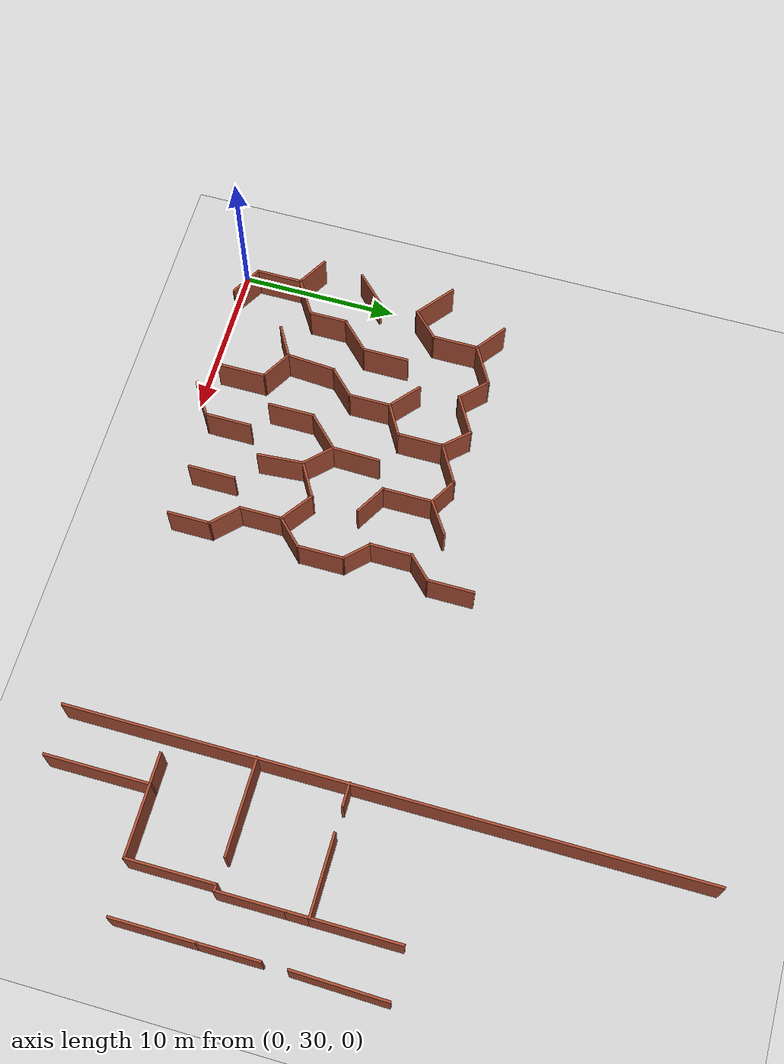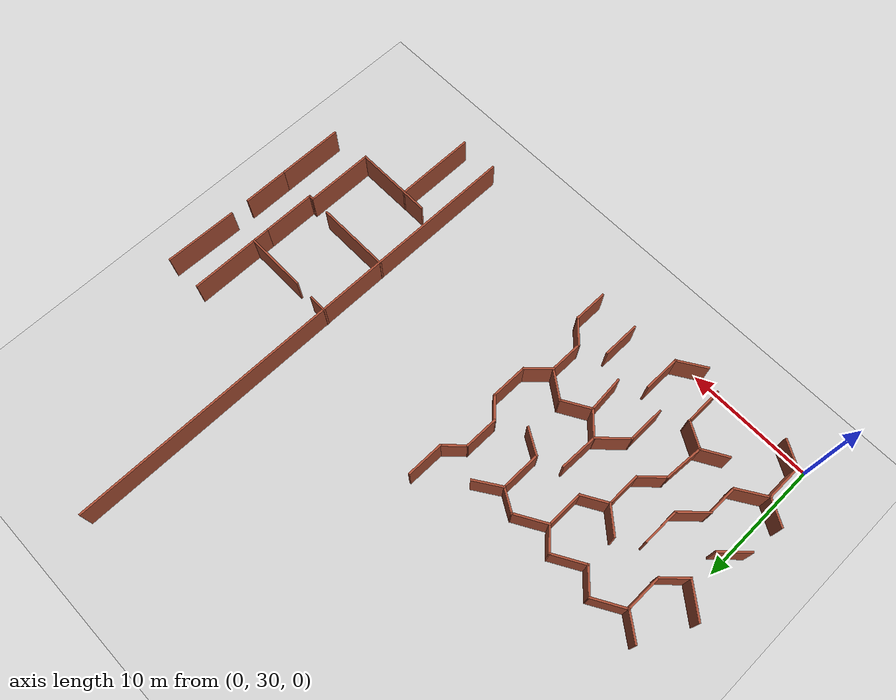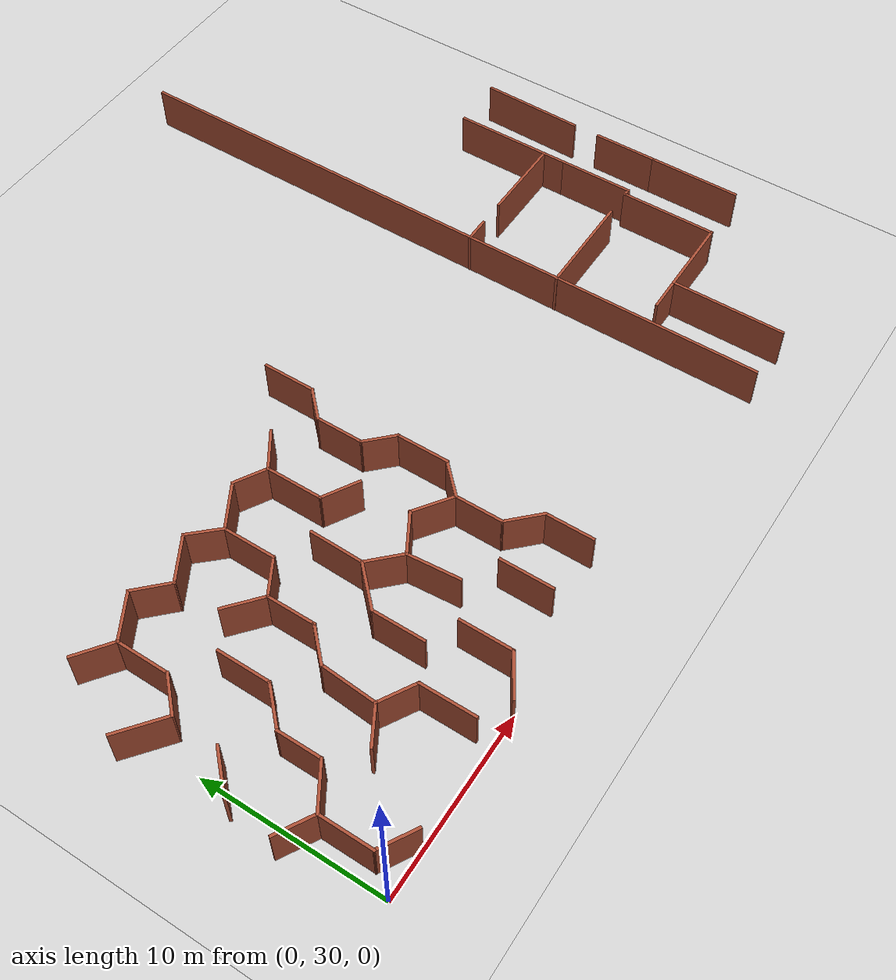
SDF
<sdf version="1.6">
 <world name="default">
  <model name="maze_rect_3">
   <pose>4e-06 -9.9e-05 0 0 -0 1.57001</pose>
   <link name="Wall_144">
    <collision name="Wall_144_Collision">
     <geometry><box><size>3 0.15 2.5</size></box></geometry>
     <pose>0 0 1.25 0 -0 0</pose>
    </collision>
    <visual name="Wall_144_Visual">
     <pose>0 0 1.25 0 -0 0</pose>
     <geometry><box><size>3 0.15 2.5</size></box></geometry>
     <material>
      <script><uri>file://media/materials/scripts/gazebo.material</uri><name>Gazebo/Bricks</name></script>
      <ambient>1 1 1 1</ambient>
     </material>
     <meta><layer>0</layer></meta>
    </visual>
    <pose>48.7587 -18.6045 0 0 -0 3.14159</pose>
   </link>
   <link name="Wall_145">
    <collision name="Wall_145_Collision">
     <geometry><box><size>2 0.15 2.5</size></box></geometry>
     <pose>0 0 1.25 0 -0 0</pose>
    </collision>
    <visual name="Wall_145_Visual">
     <pose>0 0 1.25 0 -0 0</pose>
     <geometry><box><size>2 0.15 2.5</size></box></geometry>
     <material>
      <script><uri>file://media/materials/scripts/gazebo.material</uri><name>Gazebo/Bricks</name></script>
      <ambient>1 1 1 1</ambient>
     </material>
     <meta><layer>0</layer></meta>
    </visual>
    <pose>46.6796 -17.9505 0 0 -0 2.35619</pose>
   </link>
   <link name="Wall_146">
    <collision name="Wall_146_Collision">
     <geometry><box><size>2.75 0.15 2.5</size></box></geometry>
     <pose>0 0 1.25 0 -0 0</pose>
    </collision>
    <visual name="Wall_146_Visual">
     <pose>0 0 1.25 0 -0 0</pose>
     <geometry><box><size>2.75 0.15 2.5</size></box></geometry>
     <material>
      <script><uri>file://media/materials/scripts/gazebo.material</uri><name>Gazebo/Bricks</name></script>
      <ambient>1 1 1 1</ambient>
     </material>
     <meta><layer>0</layer></meta>
    </visual>
    <pose>44.7255 -17.2964 0 0 -0 3.14159</pose>
   </link>
   <link name="Wall_147">
    <collision name="Wall_147_Collision">
     <geometry><box><size>2 0.15 2.5</size></box></geometry>
     <pose>0 0 1.25 0 -0 0</pose>
    </collision>
    <visual name="Wall_147_Visual">
     <pose>0 0 1.25 0 -0 0</pose>
     <geometry><box><size>2 0.15 2.5</size></box></geometry>
     <material>
      <script><uri>file://media/materials/scripts/gazebo.material</uri><name>Gazebo/Bricks</name></script>
      <ambient>1 1 1 1</ambient>
     </material>
     <meta><layer>0</layer></meta>
    </visual>
    <pose>42.7714 -17.9505 0 0 -0 -2.35619</pose>
   </link>
   <link name="Wall_148">
    <collision name="Wall_148_Collision">
     <geometry><box><size>3 0.15 2.5</size></box></geometry>
     <pose>0 0 1.25 0 -0 0</pose>
    </collision>
    <visual name="Wall_148_Visual">
     <pose>0 0 1.25 0 -0 0</pose>
     <geometry><box><size>3 0.15 2.5</size></box></geometry>
     <material>
      <script><uri>file://media/materials/scripts/gazebo.material</uri><name>Gazebo/Bricks</name></script>
      <ambient>1 1 1 1</ambient>
     </material>
     <meta><layer>0</layer></meta>
    </visual>
    <pose>40.6924 -18.6045 0 0 -0 3.14159</pose>
   </link>
   <link name="Wall_149">
    <collision name="Wall_149_Collision">
     <geometry><box><size>2.25 0.15 2.5</size></box></geometry>
     <pose>0 0 1.25 0 -0 0</pose>
    </collision>
    <visual name="Wall_149_Visual">
     <pose>0 0 1.25 0 -0 0</pose>
     <geometry><box><size>2.25 0.15 2.5</size></box></geometry>
     <material>
      <script><uri>file://media/materials/scripts/gazebo.material</uri><name>Gazebo/Bricks</name></script>
      <ambient>1 1 1 1</ambient>
     </material>
     <meta><layer>0</layer></meta>
    </visual>
    <pose>38.5249 -17.8621 0 0 -0 2.35619</pose>
   </link>
   <link name="Wall_150">
    <collision name="Wall_150_Collision">
     <geometry><box><size>2.75 0.15 2.5</size></box></geometry>
     <pose>0 0 1.25 0 -0 0</pose>
    </collision>
    <visual name="Wall_150_Visual">
     <pose>0 0 1.25 0 -0 0</pose>
     <geometry><box><size>2.75 0.15 2.5</size></box></geometry>
     <material>
      <script><uri>file://media/materials/scripts/gazebo.material</uri><name>Gazebo/Bricks</name></script>
      <ambient>1 1 1 1</ambient>
     </material>
     <meta><layer>0</layer></meta>
    </visual>
    <pose>36.4824 -17.1196 0 0 -0 3.14159</pose>
   </link>
   <link name="Wall_151">
    <collision name="Wall_151_Collision">
     <geometry><box><size>2.25 0.15 2.5</size></box></geometry>
     <pose>0 0 1.25 0 -0 0</pose>
    </collision>
    <visual name="Wall_151_Visual">
     <pose>0 0 1.25 0 -0 0</pose>
     <geometry><box><size>2.25 0.15 2.5</size></box></geometry>
     <material>
      <script><uri>file://media/materials/scripts/gazebo.material</uri><name>Gazebo/Bricks</name></script>
      <ambient>1 1 1 1</ambient>
     </material>
     <meta><layer>0</layer></meta>
    </visual>
    <pose>34.44 -17.8621 0 0 -0 -2.35619</pose>
   </link>
   <link name="Wall_152">
    <collision name="Wall_152_Collision">
     <geometry><box><size>2.75 0.15 2.5</size></box></geometry>
     <pose>0 0 1.25 0 -0 0</pose>
    </collision>
    <visual name="Wall_152_Visual">
     <pose>0 0 1.25 0 -0 0</pose>
     <geometry><box><size>2.75 0.15 2.5</size></box></geometry>
     <material>
      <script><uri>file://media/materials/scripts/gazebo.material</uri><name>Gazebo/Bricks</name></script>
      <ambient>1 1 1 1</ambient>
     </material>
     <meta><layer>0</layer></meta>
    </visual>
    <pose>32.3975 -18.6045 0 0 -0 3.14159</pose>
   </link>
   <link name="Wall_208">
    <collision name="Wall_208_Collision">
     <geometry><box><size>3 0.15 2.5</size></box></geometry>
     <pose>0 0 1.25 0 -0 0</pose>
    </collision>
    <visual name="Wall_208_Visual">
     <pose>0 0 1.25 0 -0 0</pose>
     <geometry><box><size>3 0.15 2.5</size></box></geometry>
     <material>
      <script><uri>file://media/materials/scripts/gazebo.material</uri><name>Gazebo/Bricks</name></script>
      <ambient>1 1 1 1</ambient>
     </material>
     <meta><layer>0</layer></meta>
    </visual>
    <pose>32.7462 -15.3032 0 0 -0 3.14159</pose>
   </link>
   <link name="Wall_215">
    <collision name="Wall_215_Collision">
     <geometry><box><size>3 0.15 2.5</size></box></geometry>
     <pose>0 0 1.25 0 -0 0</pose>
    </collision>
    <visual name="Wall_215_Visual">
     <pose>0 0 1.25 0 -0 0</pose>
     <geometry><box><size>3 0.15 2.5</size></box></geometry>
     <material>
      <script><uri>file://media/materials/scripts/gazebo.material</uri><name>Gazebo/Bricks</name></script>
      <ambient>1 1 1 1</ambient>
     </material>
     <meta><layer>0</layer></meta>
    </visual>
    <pose>36.1781 -9.85453 0 0 -0 0</pose>
   </link>
   <link name="Wall_216">
    <collision name="Wall_216_Collision">
     <geometry><box><size>2.75 0.15 2.5</size></box></geometry>
     <pose>0 0 1.25 0 -0 0</pose>
    </collision>
    <visual name="Wall_216_Visual">
     <pose>0 0 1.25 0 -0 0</pose>
     <geometry><box><size>2.75 0.15 2.5</size></box></geometry>
     <material>
      <script><uri>file://media/materials/scripts/gazebo.material</uri><name>Gazebo/Bricks</name></script>
      <ambient>1 1 1 1</ambient>
     </material>
     <meta><layer>0</layer></meta>
    </visual>
    <pose>38.5224 -10.7738 0 0 -0 -0.785398</pose>
   </link>
   <link name="Wall_217">
    <collision name="Wall_217_Collision">
     <geometry><box><size>2.25 0.15 2.5</size></box></geometry>
     <pose>0 0 1.25 0 -0 0</pose>
    </collision>
    <visual name="Wall_217_Visual">
     <pose>0 0 1.25 0 -0 0</pose>
     <geometry><box><size>2.25 0.15 2.5</size></box></geometry>
     <material>
      <script><uri>file://media/materials/scripts/gazebo.material</uri><name>Gazebo/Bricks</name></script>
      <ambient>1 1 1 1</ambient>
     </material>
     <meta><layer>0</layer></meta>
    </visual>
    <pose>38.6992 -12.4355 0 0 -0 -2.35619</pose>
   </link>
   <link name="Wall_218">
    <collision name="Wall_218_Collision">
     <geometry><box><size>2.5 0.15 2.5</size></box></geometry>
     <pose>0 0 1.25 0 -0 0</pose>
    </collision>
    <visual name="Wall_218_Visual">
     <pose>0 0 1.25 0 -0 0</pose>
     <geometry><box><size>2.5 0.15 2.5</size></box></geometry>
     <material>
      <script><uri>file://media/materials/scripts/gazebo.material</uri><name>Gazebo/Bricks</name></script>
      <ambient>1 1 1 1</ambient>
     </material>
     <meta><layer>0</layer></meta>
    </visual>
    <pose>38.5442 -14.1955 0 0 -0 -1.0472</pose>
   </link>
   <link name="Wall_220">
    <collision name="Wall_220_Collision">
     <geometry><box><size>2.48566 0.15 2.5</size></box></geometry>
     <pose>0 0 1.25 0 -0 0</pose>
    </collision>
    <visual name="Wall_220_Visual">
     <pose>0 0 1.25 0 -0 0</pose>
     <geometry><box><size>2.48566 0.15 2.5</size></box></geometry>
     <material>
      <script><uri>file://media/materials/scripts/gazebo.material</uri><name>Gazebo/Bricks</name></script>
      <ambient>1 1 1 1</ambient>
     </material>
     <meta><layer>0</layer></meta>
    </visual>
    <pose>38.4571 -16.1663 0 0 -0 0.954913</pose>
   </link>
   <link name="Wall_222">
    <collision name="Wall_222_Collision">
     <geometry><box><size>2.99185 0.15 2.5</size></box></geometry>
     <pose>0 0 1.25 0 -0 0</pose>
    </collision>
    <visual name="Wall_222_Visual">
     <pose>0 0 1.25 0 -0 0</pose>
     <geometry><box><size>2.99185 0.15 2.5</size></box></geometry>
     <material>
      <script><uri>file://media/materials/scripts/gazebo.material</uri><name>Gazebo/Bricks</name></script>
      <ambient>1 1 1 1</ambient>
     </material>
     <meta><layer>0</layer></meta>
    </visual>
    <pose>36.5401 -13.2884 0 0 -0 0.077809</pose>
   </link>
   <link name="Wall_224">
    <collision name="Wall_224_Collision">
     <geometry><box><size>3.07986 0.15 2.5</size></box></geometry>
     <pose>0 0 1.25 0 -0 0</pose>
    </collision>
    <visual name="Wall_224_Visual">
     <pose>0 0 1.25 0 -0 0</pose>
     <geometry><box><size>3.07986 0.15 2.5</size></box></geometry>
     <material>
      <script><uri>file://media/materials/scripts/gazebo.material</uri><name>Gazebo/Bricks</name></script>
      <ambient>1 1 1 1</ambient>
     </material>
     <meta><layer>0</layer></meta>
    </visual>
    <pose>40.9062 -11.726 0 0 -0 3.11909</pose>
   </link>
   <link name="Wall_226">
    <collision name="Wall_226_Collision">
     <geometry><box><size>3 0.15 2.5</size></box></geometry>
     <pose>0 0 1.25 0 -0 0</pose>
    </collision>
    <visual name="Wall_226_Visual">
     <pose>0 0 1.25 0 -0 0</pose>
     <geometry><box><size>3 0.15 2.5</size></box></geometry>
     <material>
      <script><uri>file://media/materials/scripts/gazebo.material</uri><name>Gazebo/Bricks</name></script>
      <ambient>1 1 1 1</ambient>
     </material>
     <meta><layer>0</layer></meta>
    </visual>
    <pose>32.5875 -11.6002 0 0 -0 3.14159</pose>
   </link>
   <link name="Wall_232">
    <collision name="Wall_232_Collision">
     <geometry><box><size>2.51461 0.15 2.5</size></box></geometry>
     <pose>0 0 1.25 0 -0 0</pose>
    </collision>
    <visual name="Wall_232_Visual">
     <pose>0 0 1.25 0 -0 0</pose>
     <geometry><box><size>2.51461 0.15 2.5</size></box></geometry>
     <material>
      <script><uri>file://media/materials/scripts/gazebo.material</uri><name>Gazebo/Bricks</name></script>
      <ambient>1 1 1 1</ambient>
     </material>
     <meta><layer>0</layer></meta>
    </visual>
    <pose>30.5327 -10.5996 0 0 -0 -1.00902</pose>
   </link>
   <link name="Wall_234">
    <collision name="Wall_234_Collision">
     <geometry><box><size>2.25 0.15 2.5</size></box></geometry>
     <pose>0 0 1.25 0 -0 0</pose>
    </collision>
    <visual name="Wall_234_Visual">
     <pose>0 0 1.25 0 -0 0</pose>
     <geometry><box><size>2.25 0.15 2.5</size></box></geometry>
     <material>
      <script><uri>file://media/materials/scripts/gazebo.material</uri><name>Gazebo/Bricks</name></script>
      <ambient>1 1 1 1</ambient>
     </material>
     <meta><layer>0</layer></meta>
    </visual>
    <pose>34.3259 -5.26225 0 0 -0 -1.0472</pose>
   </link>
   <link name="Wall_235">
    <collision name="Wall_235_Collision">
     <geometry><box><size>2.25 0.15 2.5</size></box></geometry>
     <pose>0 0 1.25 0 -0 0</pose>
    </collision>
    <visual name="Wall_235_Visual">
     <pose>0 0 1.25 0 -0 0</pose>
     <geometry><box><size>2.25 0.15 2.5</size></box></geometry>
     <material>
      <script><uri>file://media/materials/scripts/gazebo.material</uri><name>Gazebo/Bricks</name></script>
      <ambient>1 1 1 1</ambient>
     </material>
     <meta><layer>0</layer></meta>
    </visual>
    <pose>34.3259 -7.08091 0 0 -0 -2.0944</pose>
   </link>
   <link name="Wall_236">
    <collision name="Wall_236_Collision">
     <geometry><box><size>3.12301 0.15 2.5</size></box></geometry>
     <pose>0 0 1.25 0 -0 0</pose>
    </collision>
    <visual name="Wall_236_Visual">
     <pose>0 0 1.25 0 -0 0</pose>
     <geometry><box><size>3.12301 0.15 2.5</size></box></geometry>
     <material>
      <script><uri>file://media/materials/scripts/gazebo.material</uri><name>Gazebo/Bricks</name></script>
      <ambient>1 1 1 1</ambient>
     </material>
     <meta><layer>0</layer></meta>
    </visual>
    <pose>32.3144 -7.99356 0 0 -0 -3.13936</pose>
   </link>
   <link name="Wall_238">
    <collision name="Wall_238_Collision">
     <geometry><box><size>2.25 0.15 2.5</size></box></geometry>
     <pose>0 0 1.25 0 -0 0</pose>
    </collision>
    <visual name="Wall_238_Visual">
     <pose>0 0 1.25 0 -0 0</pose>
     <geometry><box><size>2.25 0.15 2.5</size></box></geometry>
     <material>
      <script><uri>file://media/materials/scripts/gazebo.material</uri><name>Gazebo/Bricks</name></script>
      <ambient>1 1 1 1</ambient>
     </material>
     <meta><layer>0</layer></meta>
    </visual>
    <pose>42.6312 -14.4468 0 0 -0 1.0472</pose>
   </link>
   <link name="Wall_239">
    <collision name="Wall_239_Collision">
     <geometry><box><size>3.25 0.15 2.5</size></box></geometry>
     <pose>0 0 1.25 0 -0 0</pose>
    </collision>
    <visual name="Wall_239_Visual">
     <pose>0 0 1.25 0 -0 0</pose>
     <geometry><box><size>3.25 0.15 2.5</size></box></geometry>
     <material>
      <script><uri>file://media/materials/scripts/gazebo.material</uri><name>Gazebo/Bricks</name></script>
      <ambient>1 1 1 1</ambient>
     </material>
     <meta><layer>0</layer></meta>
    </visual>
    <pose>44.7062 -13.5375 0 0 -0 0</pose>
   </link>
   <link name="Wall_240">
    <collision name="Wall_240_Collision">
     <geometry><box><size>2 0.15 2.5</size></box></geometry>
     <pose>0 0 1.25 0 -0 0</pose>
    </collision>
    <visual name="Wall_240_Visual">
     <pose>0 0 1.25 0 -0 0</pose>
     <geometry><box><size>2 0.15 2.5</size></box></geometry>
     <material>
      <script><uri>file://media/materials/scripts/gazebo.material</uri><name>Gazebo/Bricks</name></script>
      <ambient>1 1 1 1</ambient>
     </material>
     <meta><layer>0</layer></meta>
    </visual>
    <pose>46.7187 -12.7364 0 0 -0 1.0472</pose>
   </link>
   <link name="Wall_241">
    <collision name="Wall_241_Collision">
     <geometry><box><size>2.75 0.15 2.5</size></box></geometry>
     <pose>0 0 1.25 0 -0 0</pose>
    </collision>
    <visual name="Wall_241_Visual">
     <pose>0 0 1.25 0 -0 0</pose>
     <geometry><box><size>2.75 0.15 2.5</size></box></geometry>
     <material>
      <script><uri>file://media/materials/scripts/gazebo.material</uri><name>Gazebo/Bricks</name></script>
      <ambient>1 1 1 1</ambient>
     </material>
     <meta><layer>0</layer></meta>
    </visual>
    <pose>46.5312 -10.8095 0 0 -0 2.0944</pose>
   </link>
   <link name="Wall_242">
    <collision name="Wall_242_Collision">
     <geometry><box><size>3 0.15 2.5</size></box></geometry>
     <pose>0 0 1.25 0 -0 0</pose>
    </collision>
    <visual name="Wall_242_Visual">
     <pose>0 0 1.25 0 -0 0</pose>
     <geometry><box><size>3 0.15 2.5</size></box></geometry>
     <material>
      <script><uri>file://media/materials/scripts/gazebo.material</uri><name>Gazebo/Bricks</name></script>
      <ambient>1 1 1 1</ambient>
     </material>
     <meta><layer>0</layer></meta>
    </visual>
    <pose>44.4562 -9.68366 0 0 -0 3.14159</pose>
   </link>
   <link name="Wall_243">
    <collision name="Wall_243_Collision">
     <geometry><box><size>2.25 0.15 2.5</size></box></geometry>
     <pose>0 0 1.25 0 -0 0</pose>
    </collision>
    <visual name="Wall_243_Visual">
     <pose>0 0 1.25 0 -0 0</pose>
     <geometry><box><size>2.25 0.15 2.5</size></box></geometry>
     <material>
      <script><uri>file://media/materials/scripts/gazebo.material</uri><name>Gazebo/Bricks</name></script>
      <ambient>1 1 1 1</ambient>
     </material>
     <meta><layer>0</layer></meta>
    </visual>
    <pose>42.5062 -8.77434 0 0 -0 2.0944</pose>
   </link>
   <link name="Wall_244">
    <collision name="Wall_244_Collision">
     <geometry><box><size>2.75 0.15 2.5</size></box></geometry>
     <pose>0 0 1.25 0 -0 0</pose>
    </collision>
    <visual name="Wall_244_Visual">
     <pose>0 0 1.25 0 -0 0</pose>
     <geometry><box><size>2.75 0.15 2.5</size></box></geometry>
     <material>
      <script><uri>file://media/materials/scripts/gazebo.material</uri><name>Gazebo/Bricks</name></script>
      <ambient>1 1 1 1</ambient>
     </material>
     <meta><layer>0</layer></meta>
    </visual>
    <pose>40.6812 -7.86501 0 0 -0 3.14159</pose>
   </link>
   <link name="Wall_245">
    <collision name="Wall_245_Collision">
     <geometry><box><size>2.25 0.15 2.5</size></box></geometry>
     <pose>0 0 1.25 0 -0 0</pose>
    </collision>
    <visual name="Wall_245_Visual">
     <pose>0 0 1.25 0 -0 0</pose>
     <geometry><box><size>2.25 0.15 2.5</size></box></geometry>
     <material>
      <script><uri>file://media/materials/scripts/gazebo.material</uri><name>Gazebo/Bricks</name></script>
      <ambient>1 1 1 1</ambient>
     </material>
     <meta><layer>0</layer></meta>
    </visual>
    <pose>38.6388 -7.12255 0 0 -0 2.35619</pose>
   </link>
   <link name="Wall_246">
    <collision name="Wall_246_Collision">
     <geometry><box><size>3.2025 0.15 2.5</size></box></geometry>
     <pose>0 0 1.25 0 -0 0</pose>
    </collision>
    <visual name="Wall_246_Visual">
     <pose>0 0 1.25 0 -0 0</pose>
     <geometry><box><size>3.2025 0.15 2.5</size></box></geometry>
     <material>
      <script><uri>file://media/materials/scripts/gazebo.material</uri><name>Gazebo/Bricks</name></script>
      <ambient>1 1 1 1</ambient>
     </material>
     <meta><layer>0</layer></meta>
    </visual>
    <pose>36.3736 -6.27583 0 0 -0 3.07323</pose>
   </link>
   <link name="Wall_248">
    <collision name="Wall_248_Collision">
     <geometry><box><size>2.39827 0.15 2.5</size></box></geometry>
     <pose>0 0 1.25 0 -0 0</pose>
    </collision>
    <visual name="Wall_248_Visual">
     <pose>0 0 1.25 0 -0 0</pose>
     <geometry><box><size>2.39827 0.15 2.5</size></box></geometry>
     <material>
      <script><uri>file://media/materials/scripts/gazebo.material</uri><name>Gazebo/Bricks</name></script>
      <ambient>1 1 1 1</ambient>
     </material>
     <meta><layer>0</layer></meta>
    </visual>
    <pose>46.8791 -14.4733 0 0 -0 2.15809</pose>
   </link>
   <link name="Wall_250">
    <collision name="Wall_250_Collision">
     <geometry><box><size>2.94552 0.15 2.5</size></box></geometry>
     <pose>0 0 1.25 0 -0 0</pose>
    </collision>
    <visual name="Wall_250_Visual">
     <pose>0 0 1.25 0 -0 0</pose>
     <geometry><box><size>2.94552 0.15 2.5</size></box></geometry>
     <material>
      <script><uri>file://media/materials/scripts/gazebo.material</uri><name>Gazebo/Bricks</name></script>
      <ambient>1 1 1 1</ambient>
     </material>
     <meta><layer>0</layer></meta>
    </visual>
    <pose>42.72 0.211357 0 0 -0 -2.24031</pose>
   </link>
   <link name="Wall_251">
    <collision name="Wall_251_Collision">
     <geometry><box><size>2.25 0.15 2.5</size></box></geometry>
     <pose>0 0 1.25 0 -0 0</pose>
    </collision>
    <visual name="Wall_251_Visual">
     <pose>0 0 1.25 0 -0 0</pose>
     <geometry><box><size>2.25 0.15 2.5</size></box></geometry>
     <material>
      <script><uri>file://media/materials/scripts/gazebo.material</uri><name>Gazebo/Bricks</name></script>
      <ambient>1 1 1 1</ambient>
     </material>
     <meta><layer>0</layer></meta>
    </visual>
    <pose>42.595 -1.62712 0 0 -0 -0.785398</pose>
   </link>
   <link name="Wall_252">
    <collision name="Wall_252_Collision">
     <geometry><box><size>3 0.15 2.5</size></box></geometry>
     <pose>0 0 1.25 0 -0 0</pose>
    </collision>
    <visual name="Wall_252_Visual">
     <pose>0 0 1.25 0 -0 0</pose>
     <geometry><box><size>3 0.15 2.5</size></box></geometry>
     <material>
      <script><uri>file://media/materials/scripts/gazebo.material</uri><name>Gazebo/Bricks</name></script>
      <ambient>1 1 1 1</ambient>
     </material>
     <meta><layer>0</layer></meta>
    </visual>
    <pose>44.7624 -2.36958 0 0 -0 0</pose>
   </link>
   <link name="Wall_253">
    <collision name="Wall_253_Collision">
     <geometry><box><size>2.75 0.15 2.5</size></box></geometry>
     <pose>0 0 1.25 0 -0 0</pose>
    </collision>
    <visual name="Wall_253_Visual">
     <pose>0 0 1.25 0 -0 0</pose>
     <geometry><box><size>2.75 0.15 2.5</size></box></geometry>
     <material>
      <script><uri>file://media/materials/scripts/gazebo.material</uri><name>Gazebo/Bricks</name></script>
      <ambient>1 1 1 1</ambient>
     </material>
     <meta><layer>0</layer></meta>
    </visual>
    <pose>46.8374 -3.49542 0 0 -0 -1.0472</pose>
   </link>
   <link name="Wall_254">
    <collision name="Wall_254_Collision">
     <geometry><box><size>2.25 0.15 2.5</size></box></geometry>
     <pose>0 0 1.25 0 -0 0</pose>
    </collision>
    <visual name="Wall_254_Visual">
     <pose>0 0 1.25 0 -0 0</pose>
     <geometry><box><size>2.25 0.15 2.5</size></box></geometry>
     <material>
      <script><uri>file://media/materials/scripts/gazebo.material</uri><name>Gazebo/Bricks</name></script>
      <ambient>1 1 1 1</ambient>
     </material>
     <meta><layer>0</layer></meta>
    </visual>
    <pose>46.745 -5.36371 0 0 -0 -2.35619</pose>
   </link>
   <link name="Wall_255">
    <collision name="Wall_255_Collision">
     <geometry><box><size>2.75 0.15 2.5</size></box></geometry>
     <pose>0 0 1.25 0 -0 0</pose>
    </collision>
    <visual name="Wall_255_Visual">
     <pose>0 0 1.25 0 -0 0</pose>
     <geometry><box><size>2.75 0.15 2.5</size></box></geometry>
     <material>
      <script><uri>file://media/materials/scripts/gazebo.material</uri><name>Gazebo/Bricks</name></script>
      <ambient>1 1 1 1</ambient>
     </material>
     <meta><layer>0</layer></meta>
    </visual>
    <pose>46.6525 -7.23201 0 0 -0 -1.0472</pose>
   </link>
   <link name="Wall_256">
    <collision name="Wall_256_Collision">
     <geometry><box><size>2.09366 0.15 2.5</size></box></geometry>
     <pose>0 0 1.25 0 -0 0</pose>
    </collision>
    <visual name="Wall_256_Visual">
     <pose>0 0 1.25 0 -0 0</pose>
     <geometry><box><size>2.09366 0.15 2.5</size></box></geometry>
     <material>
      <script><uri>file://media/materials/scripts/gazebo.material</uri><name>Gazebo/Bricks</name></script>
      <ambient>1 1 1 1</ambient>
     </material>
     <meta><layer>0</layer></meta>
    </visual>
    <pose>46.5919 -9.02075 0 0 -0 -2.39093</pose>
   </link>
   <link name="Wall_269">
    <collision name="Wall_269_Collision">
     <geometry><box><size>2.25 0.15 2.5</size></box></geometry>
     <pose>0 0 1.25 0 -0 0</pose>
    </collision>
    <visual name="Wall_269_Visual">
     <pose>0 0 1.25 0 -0 0</pose>
     <geometry><box><size>2.25 0.15 2.5</size></box></geometry>
     <material>
      <script><uri>file://media/materials/scripts/gazebo.material</uri><name>Gazebo/Bricks</name></script>
      <ambient>1 1 1 1</ambient>
     </material>
     <meta><layer>0</layer></meta>
    </visual>
    <pose>34.5085 0.198006 0 0 -0 -2.0944</pose>
   </link>
   <link name="Wall_270">
    <collision name="Wall_270_Collision">
     <geometry><box><size>3 0.15 2.5</size></box></geometry>
     <pose>0 0 1.25 0 -0 0</pose>
    </collision>
    <visual name="Wall_270_Visual">
     <pose>0 0 1.25 0 -0 0</pose>
     <geometry><box><size>3 0.15 2.5</size></box></geometry>
     <material>
      <script><uri>file://media/materials/scripts/gazebo.material</uri><name>Gazebo/Bricks</name></script>
      <ambient>1 1 1 1</ambient>
     </material>
     <meta><layer>0</layer></meta>
    </visual>
    <pose>32.5585 -0.711321 0 0 -0 3.14159</pose>
   </link>
   <link name="Wall_271">
    <collision name="Wall_271_Collision">
     <geometry><box><size>2.25 0.15 2.5</size></box></geometry>
     <pose>0 0 1.25 0 -0 0</pose>
    </collision>
    <visual name="Wall_271_Visual">
     <pose>0 0 1.25 0 -0 0</pose>
     <geometry><box><size>2.25 0.15 2.5</size></box></geometry>
     <material>
      <script><uri>file://media/materials/scripts/gazebo.material</uri><name>Gazebo/Bricks</name></script>
      <ambient>1 1 1 1</ambient>
     </material>
     <meta><layer>0</layer></meta>
    </visual>
    <pose>30.6085 -1.62065 0 0 -0 -2.0944</pose>
   </link>
   <link name="Wall_283">
    <collision name="Wall_283_Collision">
     <geometry><box><size>3 0.15 2.5</size></box></geometry>
     <pose>0 0 1.25 0 -0 0</pose>
    </collision>
    <visual name="Wall_283_Visual">
     <pose>0 0 1.25 0 -0 0</pose>
     <geometry><box><size>3 0.15 2.5</size></box></geometry>
     <material>
      <script><uri>file://media/materials/scripts/gazebo.material</uri><name>Gazebo/Bricks</name></script>
      <ambient>1 1 1 1</ambient>
     </material>
     <meta><layer>0</layer></meta>
    </visual>
    <pose>40.7341 -4.45873 0 0 -0 3.14159</pose>
   </link>
   <link name="Wall_284">
    <collision name="Wall_284_Collision">
     <geometry><box><size>2.5 0.15 2.5</size></box></geometry>
     <pose>0 0 1.25 0 -0 0</pose>
    </collision>
    <visual name="Wall_284_Visual">
     <pose>0 0 1.25 0 -0 0</pose>
     <geometry><box><size>2.5 0.15 2.5</size></box></geometry>
     <material>
      <script><uri>file://media/materials/scripts/gazebo.material</uri><name>Gazebo/Bricks</name></script>
      <ambient>1 1 1 1</ambient>
     </material>
     <meta><layer>0</layer></meta>
    </visual>
    <pose>38.4783 -3.62788 0 0 -0 2.35619</pose>
   </link>
   <link name="Wall_285">
    <collision name="Wall_285_Collision">
     <geometry><box><size>2.5 0.15 2.5</size></box></geometry>
     <pose>0 0 1.25 0 -0 0</pose>
    </collision>
    <visual name="Wall_285_Visual">
     <pose>0 0 1.25 0 -0 0</pose>
     <geometry><box><size>2.5 0.15 2.5</size></box></geometry>
     <material>
      <script><uri>file://media/materials/scripts/gazebo.material</uri><name>Gazebo/Bricks</name></script>
      <ambient>1 1 1 1</ambient>
     </material>
     <meta><layer>0</layer></meta>
    </visual>
    <pose>36.4724 -2.79703 0 0 -0 3.14159</pose>
   </link>
   <link name="Wall_286">
    <collision name="Wall_286_Collision">
     <geometry><box><size>2.61508 0.15 2.5</size></box></geometry>
     <pose>0 0 1.25 0 -0 0</pose>
    </collision>
    <visual name="Wall_286_Visual">
     <pose>0 0 1.25 0 -0 0</pose>
     <geometry><box><size>2.61508 0.15 2.5</size></box></geometry>
     <material>
      <script><uri>file://media/materials/scripts/gazebo.material</uri><name>Gazebo/Bricks</name></script>
      <ambient>1 1 1 1</ambient>
     </material>
     <meta><layer>0</layer></meta>
    </visual>
    <pose>34.6405 -1.75417 0 0 -0 2.13297</pose>
   </link>
   <link name="Wall_288">
    <collision name="Wall_288_Collision">
     <geometry><box><size>2.5 0.15 2.5</size></box></geometry>
     <pose>0 0 1.25 0 -0 0</pose>
    </collision>
    <visual name="Wall_288_Visual">
     <pose>0 0 1.25 0 -0 0</pose>
     <geometry><box><size>2.5 0.15 2.5</size></box></geometry>
     <material>
      <script><uri>file://media/materials/scripts/gazebo.material</uri><name>Gazebo/Bricks</name></script>
      <ambient>1 1 1 1</ambient>
     </material>
     <meta><layer>0</layer></meta>
    </visual>
    <pose>38.5246 -0.030677 0 0 -0 2.35619</pose>
   </link>
   <link name="Wall_295">
    <collision name="Wall_295_Collision">
     <geometry><box><size>2.35684 0.15 2.5</size></box></geometry>
     <pose>0 0 1.25 0 -0 0</pose>
    </collision>
    <visual name="Wall_295_Visual">
     <pose>0 0 1.25 0 -0 0</pose>
     <geometry><box><size>2.35684 0.15 2.5</size></box></geometry>
     <material>
      <script><uri>file://media/materials/scripts/gazebo.material</uri><name>Gazebo/Bricks</name></script>
      <ambient>1 1 1 1</ambient>
     </material>
     <meta><layer>0</layer></meta>
    </visual>
    <pose>46.8447 -1.48331 0 0 -0 -2.20893</pose>
   </link>
   <link name="Wall_297">
    <collision name="Wall_297_Collision">
     <geometry><box><size>2.39305 0.15 2.5</size></box></geometry>
     <pose>0 0 1.25 0 -0 0</pose>
    </collision>
    <visual name="Wall_297_Visual">
     <pose>0 0 1.25 0 -0 0</pose>
     <geometry><box><size>2.39305 0.15 2.5</size></box></geometry>
     <material>
      <script><uri>file://media/materials/scripts/gazebo.material</uri><name>Gazebo/Bricks</name></script>
      <ambient>1 1 1 1</ambient>
     </material>
     <meta><layer>0</layer></meta>
    </visual>
    <pose>42.705 -7.00827 0 0 -0 -2.27225</pose>
   </link>
   <static>1</static>
  </model>
  <model name="map_palace_v2_model_1">
   <pose>0 60 0 0 -0 0</pose>
   <link name="Wall_275">
    <collision name="Wall_275_Collision">
     <geometry><box><size>5.25 0.15 2.5</size></box></geometry>
     <pose>0 0 1.25 0 -0 0</pose>
    </collision>
    <visual name="Wall_275_Visual">
     <pose>0 0 1.25 0 -0 0</pose>
     <geometry><box><size>5.25 0.15 2.5</size></box></geometry>
     <material>
      <script><uri>file://media/materials/scripts/gazebo.material</uri><name>Gazebo/Bricks</name></script>
      <ambient>1 1 1 1</ambient>
     </material>
     <meta><layer>0</layer></meta>
    </visual>
    <pose>42.5023 -21.6985 0 0 -0 1.5708</pose>
   </link>
   <link name="Wall_279">
    <collision name="Wall_279_Collision">
     <geometry><box><size>6.5 0.15 2.5</size></box></geometry>
     <pose>0 0 1.25 0 -0 0</pose>
    </collision>
    <visual name="Wall_279_Visual">
     <pose>0 0 1.25 0 -0 0</pose>
     <geometry><box><size>6.5 0.15 2.5</size></box></geometry>
     <material>
      <script><uri>file://media/materials/scripts/gazebo.material</uri><name>Gazebo/Bricks</name></script>
      <ambient>1 1 1 1</ambient>
     </material>
     <meta><layer>0</layer></meta>
    </visual>
    <pose>34.8569 -27.66 0 0 -0 1.5708</pose>
   </link>
   <link name="Wall_280">
    <collision name="Wall_280_Collision">
     <geometry><box><size>2 0.15 2.5</size></box></geometry>
     <pose>0 0 1.25 0 -0 0</pose>
    </collision>
    <visual name="Wall_280_Visual">
     <pose>0 0 1.25 0 -0 0</pose>
     <geometry><box><size>2 0.15 2.5</size></box></geometry>
     <material>
      <script><uri>file://media/materials/scripts/gazebo.material</uri><name>Gazebo/Bricks</name></script>
      <ambient>1 1 1 1</ambient>
     </material>
     <meta><layer>0</layer></meta>
    </visual>
    <pose>33.9319 -24.4851 0 0 -0 3.14159</pose>
   </link>
   <link name="Wall_283">
    <collision name="Wall_283_Collision">
     <geometry><box><size>4.5 0.15 2.5</size></box></geometry>
     <pose>0 0 1.25 0 -0 0</pose>
    </collision>
    <visual name="Wall_283_Visual">
     <pose>0 0 1.25 0 -0 0</pose>
     <geometry><box><size>4.5 0.15 2.5</size></box></geometry>
     <material>
      <script><uri>file://media/materials/scripts/gazebo.material</uri><name>Gazebo/Bricks</name></script>
      <ambient>1 1 1 1</ambient>
     </material>
     <meta><layer>0</layer></meta>
    </visual>
    <pose>37.0319 -24.4851 0 0 -0 0</pose>
   </link>
   <link name="Wall_284">
    <collision name="Wall_284_Collision">
     <geometry><box><size>5.5 0.15 2.5</size></box></geometry>
     <pose>0 0 1.25 0 -0 0</pose>
    </collision>
    <visual name="Wall_284_Visual">
     <pose>0 0 1.25 0 -0 0</pose>
     <geometry><box><size>5.5 0.15 2.5</size></box></geometry>
     <material>
      <script><uri>file://media/materials/scripts/gazebo.material</uri><name>Gazebo/Bricks</name></script>
      <ambient>1 1 1 1</ambient>
     </material>
     <meta><layer>0</layer></meta>
    </visual>
    <pose>39.2069 -21.8101 0 0 -0 1.5708</pose>
   </link>
   <link name="Wall_286">
    <collision name="Wall_286_Collision">
     <geometry><box><size>6 0.15 2.5</size></box></geometry>
     <pose>0 0 1.25 0 -0 0</pose>
    </collision>
    <visual name="Wall_286_Visual">
     <pose>0 0 1.25 0 -0 0</pose>
     <geometry><box><size>6 0.15 2.5</size></box></geometry>
     <material>
      <script><uri>file://media/materials/scripts/gazebo.material</uri><name>Gazebo/Bricks</name></script>
      <ambient>1 1 1 1</ambient>
     </material>
     <meta><layer>0</layer></meta>
    </visual>
    <pose>34.6819 -19.1351 0 0 -0 3.14159</pose>
   </link>
   <link name="Wall_288">
    <collision name="Wall_288_Collision">
     <geometry><box><size>0.5 0.15 2.5</size></box></geometry>
     <pose>0 0 1.25 0 -0 0</pose>
    </collision>
    <visual name="Wall_288_Visual">
     <pose>0 0 1.25 0 -0 0</pose>
     <geometry><box><size>0.5 0.15 2.5</size></box></geometry>
     <material>
      <script><uri>file://media/materials/scripts/gazebo.material</uri><name>Gazebo/Bricks</name></script>
      <ambient>1 1 1 1</ambient>
     </material>
     <meta><layer>0</layer></meta>
    </visual>
    <pose>39.3819 -19.1351 0 0 -0 0</pose>
   </link>
   <link name="Wall_289">
    <collision name="Wall_289_Collision">
     <geometry><box><size>4.25 0.15 2.5</size></box></geometry>
     <pose>0 0 1.25 0 -0 0</pose>
    </collision>
    <visual name="Wall_289_Visual">
     <pose>0 0 1.25 0 -0 0</pose>
     <geometry><box><size>4.25 0.15 2.5</size></box></geometry>
     <material>
      <script><uri>file://media/materials/scripts/gazebo.material</uri><name>Gazebo/Bricks</name></script>
      <ambient>1 1 1 1</ambient>
     </material>
     <meta><layer>0</layer></meta>
    </visual>
    <pose>39.5569 -17.085 0 0 -0 1.5708</pose>
   </link>
   <link name="Wall_290">
    <collision name="Wall_290_Collision">
     <geometry><box><size>1.5 0.15 2.5</size></box></geometry>
     <pose>0 0 1.25 0 -0 0</pose>
    </collision>
    <visual name="Wall_290_Visual">
     <pose>0 0 1.25 0 -0 0</pose>
     <geometry><box><size>1.5 0.15 2.5</size></box></geometry>
     <material>
      <script><uri>file://media/materials/scripts/gazebo.material</uri><name>Gazebo/Bricks</name></script>
      <ambient>1 1 1 1</ambient>
     </material>
     <meta><layer>0</layer></meta>
    </visual>
    <pose>39.5569 -14.36 0 0 -0 1.5708</pose>
   </link>
   <link name="Wall_291">
    <collision name="Wall_291_Collision">
     <geometry><box><size>5 0.15 2.5</size></box></geometry>
     <pose>0 0 1.25 0 -0 0</pose>
    </collision>
    <visual name="Wall_291_Visual">
     <pose>0 0 1.25 0 -0 0</pose>
     <geometry><box><size>5 0.15 2.5</size></box></geometry>
     <material>
      <script><uri>file://media/materials/scripts/gazebo.material</uri><name>Gazebo/Bricks</name></script>
      <ambient>1 1 1 1</ambient>
     </material>
     <meta><layer>0</layer></meta>
    </visual>
    <pose>37.1319 -13.6851 0 0 -0 3.14159</pose>
   </link>
   <link name="Wall_293">
    <collision name="Wall_293_Collision">
     <geometry><box><size>1.5 0.15 2.5</size></box></geometry>
     <pose>0 0 1.25 0 -0 0</pose>
    </collision>
    <visual name="Wall_293_Visual">
     <pose>0 0 1.25 0 -0 0</pose>
     <geometry><box><size>1.5 0.15 2.5</size></box></geometry>
     <material>
      <script><uri>file://media/materials/scripts/gazebo.material</uri><name>Gazebo/Bricks</name></script>
      <ambient>1 1 1 1</ambient>
     </material>
     <meta><layer>0</layer></meta>
    </visual>
    <pose>32.4319 -13.6851 0 0 -0 3.14159</pose>
   </link>
   <link name="Wall_295">
    <collision name="Wall_295_Collision">
     <geometry><box><size>5.5 0.15 2.5</size></box></geometry>
     <pose>0 0 1.25 0 -0 0</pose>
    </collision>
    <visual name="Wall_295_Visual">
     <pose>0 0 1.25 0 -0 0</pose>
     <geometry><box><size>5.5 0.15 2.5</size></box></geometry>
     <material>
      <script><uri>file://media/materials/scripts/gazebo.material</uri><name>Gazebo/Bricks</name></script>
      <ambient>1 1 1 1</ambient>
     </material>
     <meta><layer>0</layer></meta>
    </visual>
    <pose>39.5569 -11.01 0 0 -0 1.5708</pose>
   </link>
   <link name="Wall_302">
    <collision name="Wall_302_Collision">
     <geometry><box><size>3.75 0.15 2.5</size></box></geometry>
     <pose>0 0 1.25 0 -0 0</pose>
    </collision>
    <visual name="Wall_302_Visual">
     <pose>0 0 1.25 0 -0 0</pose>
     <geometry><box><size>3.75 0.15 2.5</size></box></geometry>
     <material>
      <script><uri>file://media/materials/scripts/gazebo.material</uri><name>Gazebo/Bricks</name></script>
      <ambient>1 1 1 1</ambient>
     </material>
     <meta><layer>0</layer></meta>
    </visual>
    <pose>42.5023 -17.3485 0 0 -0 1.5708</pose>
   </link>
   <link name="Wall_304">
    <collision name="Wall_304_Collision">
     <geometry><box><size>5.8416 0.15 2.5</size></box></geometry>
     <pose>0 0 1.25 0 -0 0</pose>
    </collision>
    <visual name="Wall_304_Visual">
     <pose>0 0 1.25 0 -0 0</pose>
     <geometry><box><size>5.8416 0.15 2.5</size></box></geometry>
     <material>
      <script><uri>file://media/materials/scripts/gazebo.material</uri><name>Gazebo/Bricks</name></script>
      <ambient>1 1 1 1</ambient>
     </material>
     <meta><layer>0</layer></meta>
    </visual>
    <pose>42.5686 -11.1035 0 0 -0 1.54752</pose>
   </link>
   <link name="Wall_32">
    <collision name="Wall_32_Collision">
     <geometry><box><size>38.75 0.15 2.5</size></box></geometry>
     <pose>0 0 1.25 0 -0 0</pose>
    </collision>
    <visual name="Wall_32_Visual">
     <pose>0 0 1.25 0 -0 0</pose>
     <geometry><box><size>38.75 0.15 2.5</size></box></geometry>
     <material>
      <script><uri>file://media/materials/scripts/gazebo.material</uri><name>Gazebo/Bricks</name></script>
      <ambient>1 1 1 1</ambient>
     </material>
     <meta><layer>0</layer></meta>
    </visual>
    <pose>31.7807 -11.5525 0 0 -0 -1.5708</pose>
   </link>
   <static>1</static>
  </model>
  <model name="ground_plane">
   <static>1</static>
   <link name="link">
    <collision name="collision">
     <geometry><plane><normal>0 0 1</normal><size>100 100</size></plane></geometry>
     <surface>
      <contact><collide_bitmask>65535</collide_bitmask></contact>
      <friction><ode><mu>100</mu><mu2>50</mu2></ode></friction>
     </surface>
    </collision>
    <visual name="visual">
     <cast_shadows>0</cast_shadows>
     <geometry><plane><normal>0 0 1</normal><size>100 100</size></plane></geometry>
     <material>
      <script><uri>file://media/materials/scripts/gazebo.material</uri><name>Gazebo/Grey</name></script>
     </material>
    </visual>
   </link>
   <pose>9.31394 52.073 0 0 -0 0</pose>
  </model>
 </world>
</sdf>
